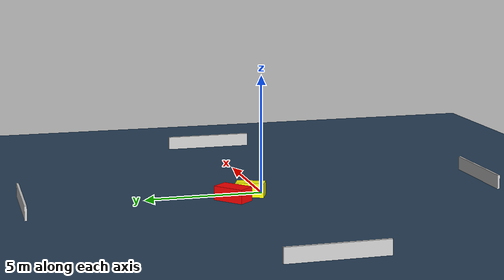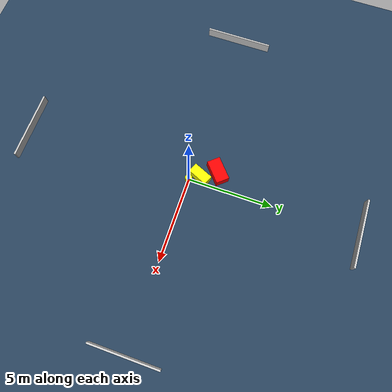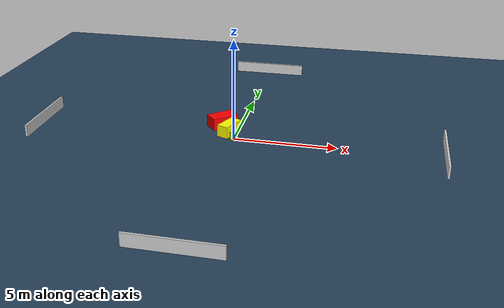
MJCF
<?xml version="1.0" ?>
<mujoco model="generated_environment">
  <option timestep="0.01" integrator="RK4" cone="elliptic"/>
  <default>
    <geom density="1"/>
  </default>
  <asset>
    <texture builtin="gradient" height="3072" name="skybox" rgb1="0.3 0.5 0.7" rgb2="0 0 0" type="skybox" width="512"/>
    <texture builtin="checker" height="300" name="groundplane" rgb1="0.2 0.3 0.4" rgb2="0.1 0.2 0.3" type="2d" width="300"/>
    <material name="groundplane" reflectance="0.2" texrepeat="5 5" texture="groundplane"/>
  </asset>
  <worldbody>
    <light dir="0 0 -1" directional="true" pos="0 0 1.5"/>
    <geom condim="3" friction="0.5 0.005 0.001" material="groundplane" name="floor" pos="0 0 0" size="0 0 0.05" type="plane"/>
    <body name="walls">
      <geom name="wall_1" condim="4" pos="-10.0 0.0 0.3" rgba="0.800000011920929 0.800000011920929 0.800000011920929 1.0" size="0.05 2.0 0.3" type="box"/>
      <geom name="wall_2" condim="4" pos="10.0 0.0 0.3" rgba="0.800000011920929 0.800000011920929 0.800000011920929 1.0" size="0.05 2.0 0.3" type="box"/>
      <geom name="wall_3" condim="4" pos="0.0 -10.0 0.3" rgba="0.800000011920929 0.800000011920929 0.800000011920929 1.0" size="2.0 0.05 0.3" type="box"/>
      <geom name="wall_4" condim="4" pos="0.0 10.0 0.3" rgba="0.800000011920929 0.800000011920929 0.800000011920929 1.0" size="2.0 0.05 0.3" type="box"/>
    </body>
    <body name="robot">
      <joint name="joint_x" type="slide" pos="0 0 0" axis="1 0 0"/>
      <joint name="joint_y" type="slide" pos="0 0 0" axis="0 1 0"/>
      <geom name="robot" type="cylinder" pos="0.0 0.0 0.2" size="0.2 0.2 0.0" mass="5.0" friction="1.0 0.005 0.0001" condim="4" rgba="1.0 1.0 0.0 1.0"/>
    </body>
    <body name="obstacle_1_movable">
      <geom name="obstacle_1_movable" condim="4" pos="-0.36633686198885873 0.5804561169056633 0.3" euler="0 0 66.65487348537569" friction="0.0 0.005 0.001" rgba="1.0 1.0 0.0 1.0" size="0.5984512011018086 0.2942329425657759 0.3" type="box" mass="0.1"/>
      <joint type="free"/>
    </body>
    <body name="obstacle_2_static">
      <geom name="obstacle_2_static" condim="4" pos="-0.9150638192645387 1.4688914161541946 0.3" euler="0 0 131.01642146433306" friction="0.0 0.005 0.001" rgba="1.0 0.0 0.0 1.0" size="0.3883887640921566 0.6900665809923381 0.3" type="box"/>
    </body>
  </worldbody>
  <actuator>
    <motor name="actuator_x" joint="joint_x" gear="1" ctrlrange="-1 1"/>
    <motor name="actuator_y" joint="joint_y" gear="1" ctrlrange="-1 1"/>
  </actuator>
</mujoco>
